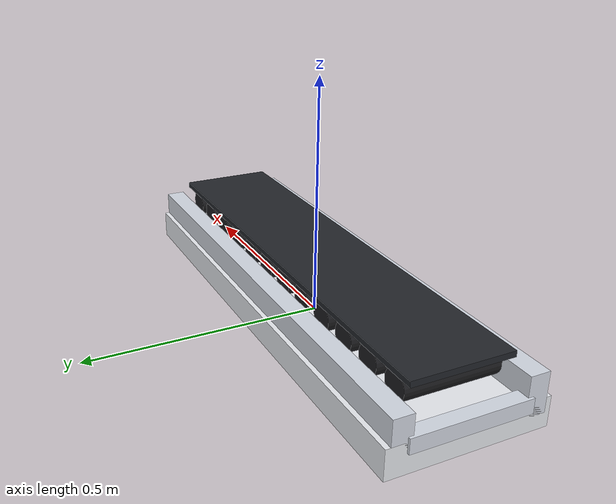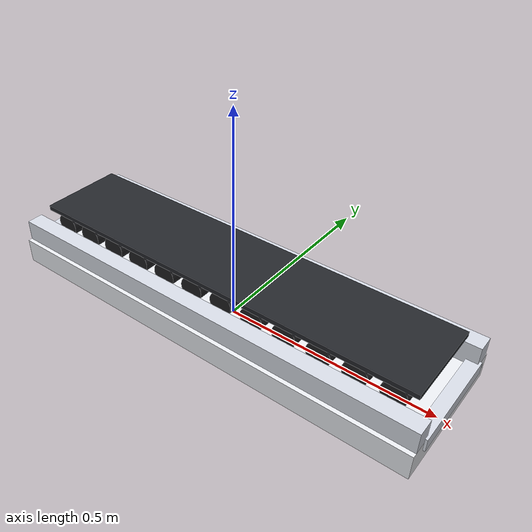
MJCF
<mujoco model="conveyor">
  <compiler angle="radian" autolimits="true"/>

  <default>
    <geom friction="1.5 0.02 0.002" condim="4"/>
    <joint damping="0.05" armature="0.001"/>
    <default class="roller">
      <joint type="hinge" axis="0 1 0" limited="false"/>
      <geom type="cylinder" size="0.028 0.095" quat="0.7071068 0.7071068 0 0"
            rgba="0.12 0.12 0.13 1" friction="3.0 0.02 0.002" contype="0" conaffinity="0"/>
    </default>
    <default class="belt_segment">
      <joint type="slide" axis="1 0 0" limited="false" damping="0.02"/>
      <geom type="box" size="0.018 0.096 0.006" rgba="0.18 0.19 0.2 1"
            friction="2.2 0.02 0.002" condim="4" contype="4" conaffinity="2" group="3"/>
    </default>
  </default>

  <worldbody>
    <body name="base_link">
      <geom name="frame_base" type="box" pos="0 0 0.03" size="0.52 0.16 0.03" rgba="0.92 0.93 0.95 1" contype="1" conaffinity="3"/>
      <geom name="frame_left" type="box" pos="0 0.13 0.07" size="0.52 0.02 0.04" rgba="0.84 0.86 0.9 1" contype="1" conaffinity="3"/>
      <geom name="frame_right" type="box" pos="0 -0.13 0.07" size="0.52 0.02 0.04" rgba="0.84 0.86 0.9 1" contype="1" conaffinity="3"/>
      <geom name="frame_front" type="box" pos="0.51 0 0.055" size="0.015 0.12 0.015" rgba="0.84 0.86 0.9 1" contype="1" conaffinity="3"/>
      <geom name="frame_rear" type="box" pos="-0.51 0 0.055" size="0.015 0.12 0.015" rgba="0.84 0.86 0.9 1" contype="1" conaffinity="3"/>
      <geom name="belt_base" type="box" pos="0 0 0.138" size="0.49 0.102 0.006" rgba="0.14 0.15 0.17 1" contype="1" conaffinity="3"/>

      <body name="belt_segment_00" pos="-0.465 0 0.142">
        <joint name="belt_segment_00_joint" class="belt_segment"/>
        <geom class="belt_segment"/>
      </body>
      <body name="belt_segment_01" pos="-0.435 0 0.142">
        <joint name="belt_segment_01_joint" class="belt_segment"/>
        <geom class="belt_segment"/>
      </body>
      <body name="belt_segment_02" pos="-0.405 0 0.142">
        <joint name="belt_segment_02_joint" class="belt_segment"/>
        <geom class="belt_segment"/>
      </body>
      <body name="belt_segment_03" pos="-0.375 0 0.142">
        <joint name="belt_segment_03_joint" class="belt_segment"/>
        <geom class="belt_segment"/>
      </body>
      <body name="belt_segment_04" pos="-0.345 0 0.142">
        <joint name="belt_segment_04_joint" class="belt_segment"/>
        <geom class="belt_segment"/>
      </body>
      <body name="belt_segment_05" pos="-0.315 0 0.142">
        <joint name="belt_segment_05_joint" class="belt_segment"/>
        <geom class="belt_segment"/>
      </body>
      <body name="belt_segment_06" pos="-0.285 0 0.142">
        <joint name="belt_segment_06_joint" class="belt_segment"/>
        <geom class="belt_segment"/>
      </body>
      <body name="belt_segment_07" pos="-0.255 0 0.142">
        <joint name="belt_segment_07_joint" class="belt_segment"/>
        <geom class="belt_segment"/>
      </body>
      <body name="belt_segment_08" pos="-0.225 0 0.142">
        <joint name="belt_segment_08_joint" class="belt_segment"/>
        <geom class="belt_segment"/>
      </body>
      <body name="belt_segment_09" pos="-0.195 0 0.142">
        <joint name="belt_segment_09_joint" class="belt_segment"/>
        <geom class="belt_segment"/>
      </body>
      <body name="belt_segment_10" pos="-0.165 0 0.142">
        <joint name="belt_segment_10_joint" class="belt_segment"/>
        <geom class="belt_segment"/>
      </body>
      <body name="belt_segment_11" pos="-0.135 0 0.142">
        <joint name="belt_segment_11_joint" class="belt_segment"/>
        <geom class="belt_segment"/>
      </body>
      <body name="belt_segment_12" pos="-0.105 0 0.142">
        <joint name="belt_segment_12_joint" class="belt_segment"/>
        <geom class="belt_segment"/>
      </body>
      <body name="belt_segment_13" pos="-0.075 0 0.142">
        <joint name="belt_segment_13_joint" class="belt_segment"/>
        <geom class="belt_segment"/>
      </body>
      <body name="belt_segment_14" pos="-0.045 0 0.142">
        <joint name="belt_segment_14_joint" class="belt_segment"/>
        <geom class="belt_segment"/>
      </body>
      <body name="belt_segment_15" pos="-0.015 0 0.142">
        <joint name="belt_segment_15_joint" class="belt_segment"/>
        <geom class="belt_segment"/>
      </body>
      <body name="belt_segment_16" pos="0.015 0 0.142">
        <joint name="belt_segment_16_joint" class="belt_segment"/>
        <geom class="belt_segment"/>
      </body>
      <body name="belt_segment_17" pos="0.045 0 0.142">
        <joint name="belt_segment_17_joint" class="belt_segment"/>
        <geom class="belt_segment"/>
      </body>
      <body name="belt_segment_18" pos="0.075 0 0.142">
        <joint name="belt_segment_18_joint" class="belt_segment"/>
        <geom class="belt_segment"/>
      </body>
      <body name="belt_segment_19" pos="0.105 0 0.142">
        <joint name="belt_segment_19_joint" class="belt_segment"/>
        <geom class="belt_segment"/>
      </body>
      <body name="belt_segment_20" pos="0.135 0 0.142">
        <joint name="belt_segment_20_joint" class="belt_segment"/>
        <geom class="belt_segment"/>
      </body>
      <body name="belt_segment_21" pos="0.165 0 0.142">
        <joint name="belt_segment_21_joint" class="belt_segment"/>
        <geom class="belt_segment"/>
      </body>
      <body name="belt_segment_22" pos="0.195 0 0.142">
        <joint name="belt_segment_22_joint" class="belt_segment"/>
        <geom class="belt_segment"/>
      </body>
      <body name="belt_segment_23" pos="0.225 0 0.142">
        <joint name="belt_segment_23_joint" class="belt_segment"/>
        <geom class="belt_segment"/>
      </body>
      <body name="belt_segment_24" pos="0.255 0 0.142">
        <joint name="belt_segment_24_joint" class="belt_segment"/>
        <geom class="belt_segment"/>
      </body>
      <body name="belt_segment_25" pos="0.285 0 0.142">
        <joint name="belt_segment_25_joint" class="belt_segment"/>
        <geom class="belt_segment"/>
      </body>
      <body name="belt_segment_26" pos="0.315 0 0.142">
        <joint name="belt_segment_26_joint" class="belt_segment"/>
        <geom class="belt_segment"/>
      </body>
      <body name="belt_segment_27" pos="0.345 0 0.142">
        <joint name="belt_segment_27_joint" class="belt_segment"/>
        <geom class="belt_segment"/>
      </body>
      <body name="belt_segment_28" pos="0.375 0 0.142">
        <joint name="belt_segment_28_joint" class="belt_segment"/>
        <geom class="belt_segment"/>
      </body>
      <body name="belt_segment_29" pos="0.405 0 0.142">
        <joint name="belt_segment_29_joint" class="belt_segment"/>
        <geom class="belt_segment"/>
      </body>
      <body name="belt_segment_30" pos="0.435 0 0.142">
        <joint name="belt_segment_30_joint" class="belt_segment"/>
        <geom class="belt_segment"/>
      </body>
      <body name="belt_segment_31" pos="0.465 0 0.142">
        <joint name="belt_segment_31_joint" class="belt_segment"/>
        <geom class="belt_segment"/>
      </body>

      <body name="roller_00" pos="-0.44 0 0.105">
        <joint name="roller_00_joint" class="roller"/>
        <geom class="roller"/>
      </body>
      <body name="roller_01" pos="-0.36 0 0.105">
        <joint name="roller_01_joint" class="roller"/>
        <geom class="roller"/>
      </body>
      <body name="roller_02" pos="-0.28 0 0.105">
        <joint name="roller_02_joint" class="roller"/>
        <geom class="roller"/>
      </body>
      <body name="roller_03" pos="-0.20 0 0.105">
        <joint name="roller_03_joint" class="roller"/>
        <geom class="roller"/>
      </body>
      <body name="roller_04" pos="-0.12 0 0.105">
        <joint name="roller_04_joint" class="roller"/>
        <geom class="roller"/>
      </body>
      <body name="roller_05" pos="-0.04 0 0.105">
        <joint name="roller_05_joint" class="roller"/>
        <geom class="roller"/>
      </body>
      <body name="roller_06" pos="0.04 0 0.105">
        <joint name="roller_06_joint" class="roller"/>
        <geom class="roller"/>
      </body>
      <body name="roller_07" pos="0.12 0 0.105">
        <joint name="roller_07_joint" class="roller"/>
        <geom class="roller"/>
      </body>
      <body name="roller_08" pos="0.20 0 0.105">
        <joint name="roller_08_joint" class="roller"/>
        <geom class="roller"/>
      </body>
      <body name="roller_09" pos="0.28 0 0.105">
        <joint name="roller_09_joint" class="roller"/>
        <geom class="roller"/>
      </body>
      <body name="roller_10" pos="0.36 0 0.105">
        <joint name="roller_10_joint" class="roller"/>
        <geom class="roller"/>
      </body>
      <body name="roller_11" pos="0.44 0 0.105">
        <joint name="roller_11_joint" class="roller"/>
        <geom class="roller"/>
      </body>
    </body>
  </worldbody>

  <actuator>
    <velocity name="roller_00_drive" joint="roller_00_joint" kv="4" ctrlrange="-12 12"/>
    <velocity name="roller_01_drive" joint="roller_01_joint" kv="4" ctrlrange="-12 12"/>
    <velocity name="roller_02_drive" joint="roller_02_joint" kv="4" ctrlrange="-12 12"/>
    <velocity name="roller_03_drive" joint="roller_03_joint" kv="4" ctrlrange="-12 12"/>
    <velocity name="roller_04_drive" joint="roller_04_joint" kv="4" ctrlrange="-12 12"/>
    <velocity name="roller_05_drive" joint="roller_05_joint" kv="4" ctrlrange="-12 12"/>
    <velocity name="roller_06_drive" joint="roller_06_joint" kv="4" ctrlrange="-12 12"/>
    <velocity name="roller_07_drive" joint="roller_07_joint" kv="4" ctrlrange="-12 12"/>
    <velocity name="roller_08_drive" joint="roller_08_joint" kv="4" ctrlrange="-12 12"/>
    <velocity name="roller_09_drive" joint="roller_09_joint" kv="4" ctrlrange="-12 12"/>
    <velocity name="roller_10_drive" joint="roller_10_joint" kv="4" ctrlrange="-12 12"/>
    <velocity name="roller_11_drive" joint="roller_11_joint" kv="4" ctrlrange="-12 12"/>
  </actuator>
</mujoco>
